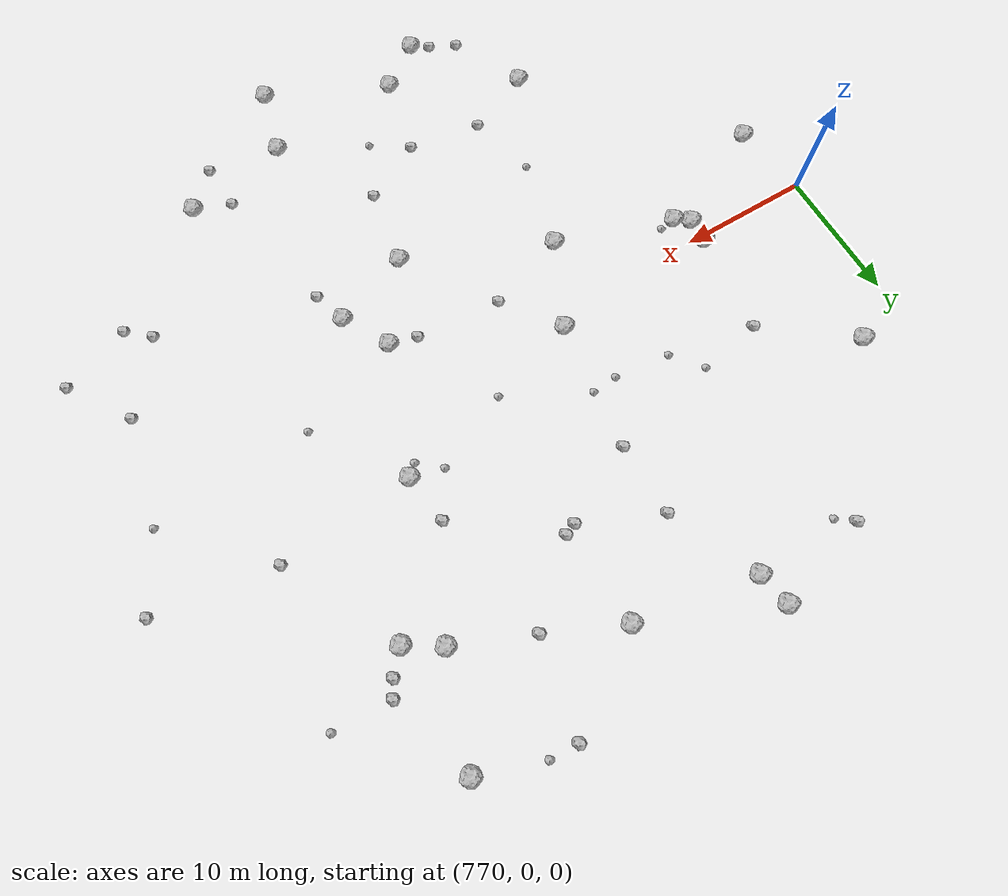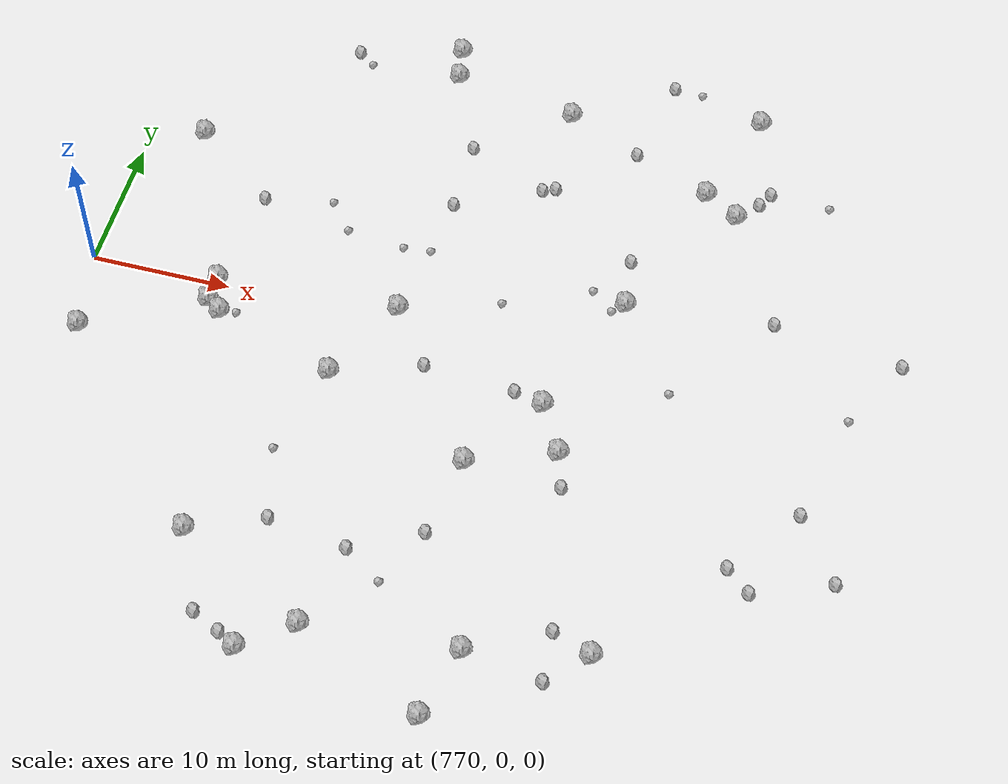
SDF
<sdf version="1.6">
 <world name="default">
  <include><uri>model://sun</uri></include>
  <model name="rock1_20_4">
   <include><uri>model://rock1</uri><pose>780.0891394612836 -2.2336790722073516 0.5 0 0 0</pose></include>
  </model>
  <model name="rock1_20_5">
   <include><uri>model://rock1</uri><pose>803.5556197309147 -3.990509019889899 0.5 0 0 0</pose></include>
  </model>
  <model name="rock1_20_6">
   <include><uri>model://rock1</uri><pose>789.9349554395548 25.44252165374143 0.5 0 0 0</pose></include>
  </model>
  <model name="rock1_20_7">
   <include><uri>model://rock1</uri><pose>779.0121374223919 -1.4523215172626927 0.5 0 0 0</pose></include>
  </model>
  <model name="rock1_20_8">
   <include><uri>model://rock1</uri><pose>779.0889737606195 0.40866435425830616 0.5 0 0 0</pose></include>
  </model>
  <model name="rock1_20_9">
   <include><uri>model://rock1</uri><pose>813.0119218113997 24.154318268394874 0.5 0 0 0</pose></include>
  </model>
  <model name="rock1_20_10">
   <include><uri>model://rock1</uri><pose>788.8872241924914 -5.114111956500981 0.5 0 0 0</pose></include>
  </model>
  <model name="rock1_20_11">
   <include><uri>model://rock1</uri><pose>783.528363959806 -19.270596084409696 0.5 0 0 0</pose></include>
  </model>
  <model name="rock1_20_12">
   <include><uri>model://rock1</uri><pose>801.8270350724961 -28.096034350414456 0.5 0 0 0</pose></include>
  </model>
  <model name="rock1_20_13">
   <include><uri>model://rock1</uri><pose>799.416043388108 21.36694152959369 0.5 0 0 0</pose></include>
  </model>
  <model name="rock1_20_14">
   <include><uri>model://rock1</uri><pose>773.8510730581395 12.814236471714509 0.5 0 0 0</pose></include>
  </model>
  <model name="rock1_20_15">
   <include><uri>model://rock1</uri><pose>790.378313203874 22.953430226045946 0.5 0 0 0</pose></include>
  </model>
  <model name="rock1_20_16">
   <include><uri>model://rock1</uri><pose>811.050218280682 -21.381250547121606 0.5 0 0 0</pose></include>
  </model>
  <model name="rock1_20_17">
   <include><uri>model://rock1</uri><pose>771.0669788261368 -5.814413114110721 0.5 0 0 0</pose></include>
  </model>
  <model name="rock1_20_18">
   <include><uri>model://rock1</uri><pose>799.6373894090611 -9.68585778284817 0.5 0 0 0</pose></include>
  </model>
  <model name="rock1_20_19">
   <include><uri>model://rock1</uri><pose>812.9572841769091 15.071682089701753 0.5 0 0 0</pose></include>
  </model>
  <model name="rock1_20_20">
   <include><uri>model://rock1</uri><pose>789.4214435024935 -26.529537550931543 0.5 0 0 0</pose></include>
  </model>
  <model name="rock1_20_21">
   <include><uri>model://rock1</uri><pose>791.9458195300189 1.1873166000902948 0.5 0 0 0</pose></include>
  </model>
  <model name="rock1_20_22">
   <include><uri>model://rock1</uri><pose>810.4789524213077 16.59268200144173 0.5 0 0 0</pose></include>
  </model>
  <model name="rock1_20_23">
   <include><uri>model://rock1</uri><pose>807.07137602506 5.528422818668673 0.5 0 0 0</pose></include>
  </model>
  <model name="rock1_20_24">
   <include><uri>model://rock1</uri><pose>805.4982077307338 -7.444031715834132 0.5 0 0 0</pose></include>
  </model>
  <model name="rock1_20_25">
   <include><uri>model://rock1</uri><pose>792.7696476137087 -23.975887823497818 0.5 0 0 0</pose></include>
  </model>
  <model name="rock1_20_26">
   <include><uri>model://rock1</uri><pose>803.1516523936851 -23.092774450030582 0.5 0 0 0</pose></include>
  </model>
  <model name="rock2_20_0">
   <include><uri>model://rock2</uri><pose>799.0316106938585 13.915156329707955 0.3 0 0 0</pose></include>
  </model>
  <model name="rock2_20_1">
   <include><uri>model://rock2</uri><pose>806.2113164597838 25.87851603936361 0.3 0 0 0</pose></include>
  </model>
  <model name="rock2_20_2">
   <include><uri>model://rock2</uri><pose>794.9951391359218 -2.9660274021333493 0.3 0 0 0</pose></include>
  </model>
  <model name="rock2_20_3">
   <include><uri>model://rock2</uri><pose>826.3683855911809 5.238510200795304 0.3 0 0 0</pose></include>
  </model>
  <model name="rock2_20_4">
   <include><uri>model://rock2</uri><pose>794.0793265204982 -17.967578290981415 0.3 0 0 0</pose></include>
  </model>
  <model name="rock2_20_5">
   <include><uri>model://rock2</uri><pose>814.956783160728 17.744176938115736 0.3 0 0 0</pose></include>
  </model>
  <model name="rock2_20_6">
   <include><uri>model://rock2</uri><pose>799.9204189843539 14.282658401722948 0.3 0 0 0</pose></include>
  </model>
  <model name="rock2_20_7">
   <include><uri>model://rock2</uri><pose>782.5515548971285 23.353811309964314 0.3 0 0 0</pose></include>
  </model>
  <model name="rock2_20_8">
   <include><uri>model://rock2</uri><pose>793.2190209598826 16.46043488890672 0.3 0 0 0</pose></include>
  </model>
  <model name="rock2_20_9">
   <include><uri>model://rock2</uri><pose>801.4728580892036 -3.4662529023360236 0.3 0 0 0</pose></include>
  </model>
  <model name="rock2_20_10">
   <include><uri>model://rock2</uri><pose>814.3342636163785 16.6089327666011 0.3 0 0 0</pose></include>
  </model>
  <model name="rock2_20_11">
   <include><uri>model://rock2</uri><pose>804.866297846049 18.92357684166116 0.3 0 0 0</pose></include>
  </model>
  <model name="rock2_20_12">
   <include><uri>model://rock2</uri><pose>786.1235058872218 -24.820617490167763 0.3 0 0 0</pose></include>
  </model>
  <model name="rock2_20_13">
   <include><uri>model://rock2</uri><pose>806.3153572467709 -10.01233716675334 0.3 0 0 0</pose></include>
  </model>
  <model name="rock2_20_14">
   <include><uri>model://rock2</uri><pose>821.7885517578809 -8.057901426642374 0.3 0 0 0</pose></include>
  </model>
  <model name="rock2_20_15">
   <include><uri>model://rock2</uri><pose>806.6092346819227 9.261204474047936 0.3 0 0 0</pose></include>
  </model>
  <model name="rock2_20_16">
   <include><uri>model://rock2</uri><pose>808.3349496380215 -20.3652806839546 0.3 0 0 0</pose></include>
  </model>
  <model name="rock2_20_17">
   <include><uri>model://rock2</uri><pose>817.3305207886003 6.497189248569036 0.3 0 0 0</pose></include>
  </model>
  <model name="rock2_20_18">
   <include><uri>model://rock2</uri><pose>824.8483483992092 -12.504242878847304 0.3 0 0 0</pose></include>
  </model>
  <model name="rock2_20_19">
   <include><uri>model://rock2</uri><pose>788.528344593231 -17.127250038320454 0.3 0 0 0</pose></include>
  </model>
  <model name="rock2_20_20">
   <include><uri>model://rock2</uri><pose>793.2232992579521 11.006511341835505 0.3 0 0 0</pose></include>
  </model>
  <model name="rock2_20_21">
   <include><uri>model://rock2</uri><pose>819.6487291824076 -14.546367070003809 0.3 0 0 0</pose></include>
  </model>
  <model name="rock2_20_22">
   <include><uri>model://rock2</uri><pose>798.6637935574429 -15.533840543543516 0.3 0 0 0</pose></include>
  </model>
  <model name="rock2_20_23">
   <include><uri>model://rock2</uri><pose>808.5748041151934 -23.915622300449048 0.3 0 0 0</pose></include>
  </model>
  <model name="rock2_20_24">
   <include><uri>model://rock2</uri><pose>817.9790474211119 -13.105407920548021 0.3 0 0 0</pose></include>
  </model>
  <model name="rock2_20_25">
   <include><uri>model://rock2</uri><pose>788.110594859742 -25.778837178673157 0.3 0 0 0</pose></include>
  </model>
  <model name="rock2_20_26">
   <include><uri>model://rock2</uri><pose>780.0271841905358 8.072862627500918 0.3 0 0 0</pose></include>
  </model>
  <model name="rock3_20_0">
   <include><uri>model://rock3</uri><pose>796.7785618231673 -19.803589466907123 0.2 0 0 0</pose></include>
  </model>
  <model name="rock3_20_1">
   <include><uri>model://rock3</uri><pose>786.6052170230492 6.816064951017495 0.2 0 0 0</pose></include>
  </model>
  <model name="rock3_20_2">
   <include><uri>model://rock3</uri><pose>787.1637911386262 -11.954310480203016 0.2 0 0 0</pose></include>
  </model>
  <model name="rock3_20_3">
   <include><uri>model://rock3</uri><pose>811.5382906656023 -0.9963871674766018 0.2 0 0 0</pose></include>
  </model>
  <model name="rock3_20_4">
   <include><uri>model://rock3</uri><pose>819.2279574696861 17.5373148986041 0.2 0 0 0</pose></include>
  </model>
  <model name="rock3_20_5">
   <include><uri>model://rock3</uri><pose>783.7571116144552 22.413461396049073 0.2 0 0 0</pose></include>
  </model>
  <model name="rock3_20_6">
   <include><uri>model://rock3</uri><pose>781.2148800358217 -2.0722857465861253 0.2 0 0 0</pose></include>
  </model>
  <model name="rock3_20_7">
   <include><uri>model://rock3</uri><pose>792.7568035729334 6.523565092366503 0.2 0 0 0</pose></include>
  </model>
  <model name="rock3_20_8">
   <include><uri>model://rock3</uri><pose>798.7618314768075 3.4280786363376876 0.2 0 0 0</pose></include>
  </model>
  <model name="rock3_20_9">
   <include><uri>model://rock3</uri><pose>806.2307138110975 4.72397777165466 0.2 0 0 0</pose></include>
  </model>
  <model name="rock3_20_10">
   <include><uri>model://rock3</uri><pose>808.2850075016589 25.751518273205818 0.2 0 0 0</pose></include>
  </model>
  <model name="rock3_20_11">
   <include><uri>model://rock3</uri><pose>804.6172327187454 6.098356190961759 0.2 0 0 0</pose></include>
  </model>
  <model name="rock3_20_12">
   <include><uri>model://rock3</uri><pose>790.8128753774141 6.33689436684088 0.2 0 0 0</pose></include>
  </model>
  <model name="rock3_20_13">
   <include><uri>model://rock3</uri><pose>784.8414564370279 8.986748651564554 0.2 0 0 0</pose></include>
  </model>
  <model name="rock3_20_14">
   <include><uri>model://rock3</uri><pose>823.5761046776199 -0.05397202248693489 0.2 0 0 0</pose></include>
  </model>
 </world>
</sdf>
